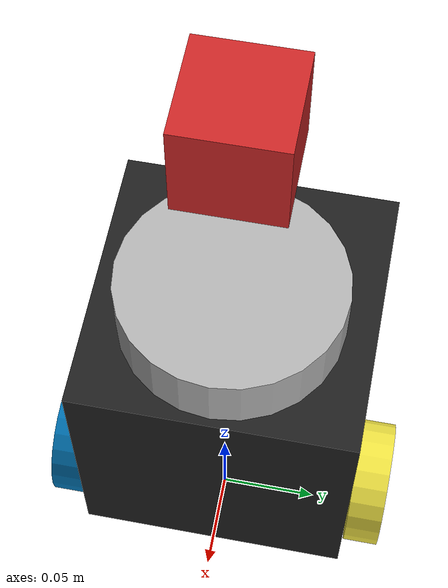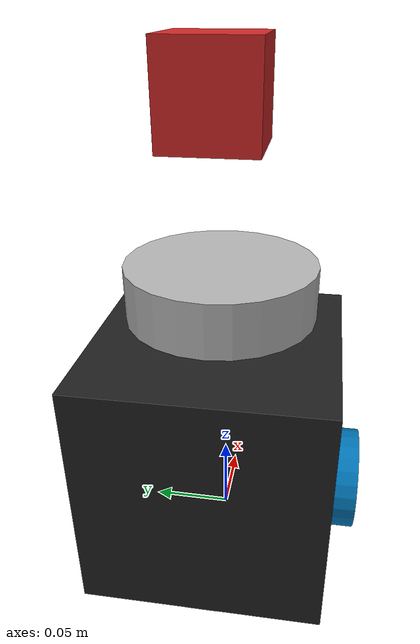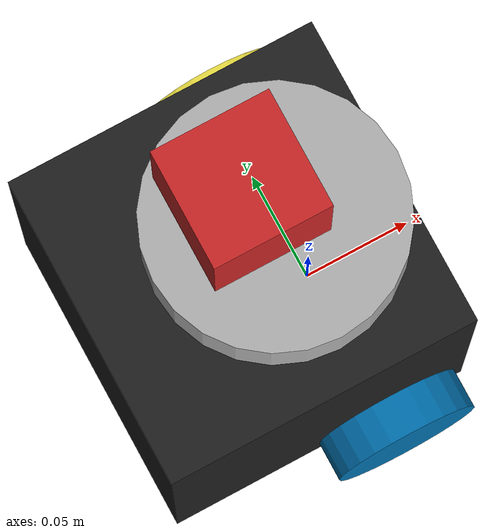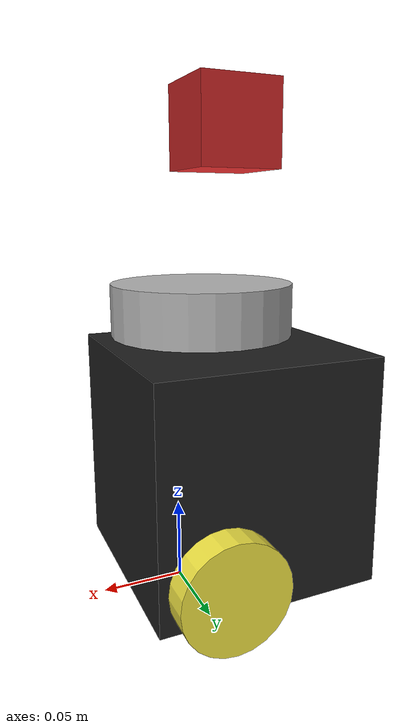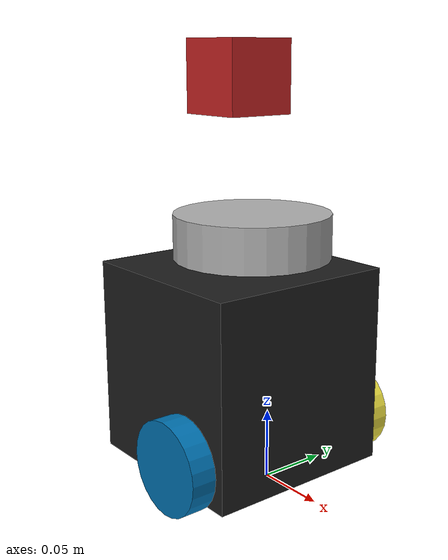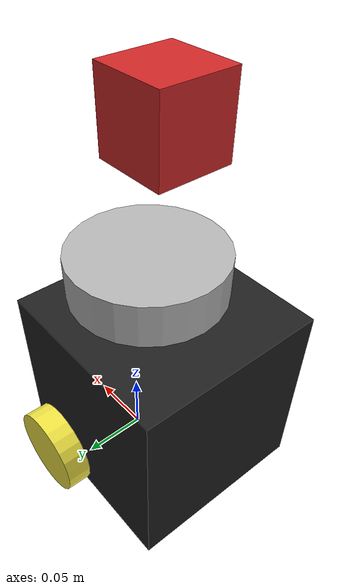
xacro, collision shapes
<?xml version="1.0" ?>
<robot name="turtlebot3_burger" xmlns:xacro="http://ros.org/wiki/xacro">
  <xacro:include filename="$(find turtlebot3_description)/urdf/common_properties.xacro"/>
  <xacro:include filename="$(find lab5)/urdf/turtlebot3_burger.gazebo.xacro"/>
  <xacro:include filename="$(find lab5)/urdf/turtlebot3_burger_camera.urdf.xacro"/>

  <link name="base_footprint"/>

  <joint name="base_joint" type="fixed">
    <parent link="base_footprint"/>
    <child link="base_link"/>
    <origin xyz="0.0 0.0 0.010" rpy="0 0 0"/>
  </joint>

  <link name="base_link">
    <visual>
      <origin xyz="-0.032 0 0.0" rpy="0 0 0"/>
      <geometry>
        <mesh filename="package://turtlebot3_description/meshes/bases/burger_base.stl" scale="0.001 0.001 0.001"/>
      </geometry>
      <material name="light_black"/>
    </visual>

    <collision>
      <origin xyz="-0.032 0 0.070" rpy="0 0 0"/>
      <geometry>
        <box size="0.140 0.140 0.143"/>
      </geometry>
    </collision>

    <inertial>
      <origin xyz="0 0 0" rpy="0 0 0"/>
      <mass value="8.2573504e-01"/>
      <inertia ixx="2.2124416e-03" ixy="-1.2294101e-05" ixz="3.4938785e-05"
               iyy="2.1193702e-03" iyz="-5.0120904e-06"
               izz="2.0064271e-03" />
    </inertial>
  </link>

  <joint name="wheel_left_joint" type="continuous">
    <parent link="base_link"/>
    <child link="wheel_left_link"/>
    <origin xyz="0.0 0.08 0.023" rpy="-1.57 0 0"/>
    <axis xyz="0 0 1"/>
  </joint>

  <link name="wheel_left_link">
    <visual>
      <origin xyz="0 0 0" rpy="1.57 0 0"/>
      <geometry>
        <mesh filename="package://turtlebot3_description/meshes/wheels/left_tire.stl" scale="0.001 0.001 0.001"/>
      </geometry>
      <material name="dark"/>
    </visual>

    <collision>
      <origin xyz="0 0 0" rpy="0 0 0"/>
      <geometry>
        <cylinder length="0.018" radius="0.033"/>
      </geometry>
    </collision>

    <inertial>
      <origin xyz="0 0 0" />
      <mass value="2.8498940e-02" />
      <inertia ixx="1.1175580e-05" ixy="-4.2369783e-11" ixz="-5.9381719e-09"
               iyy="1.1192413e-05" iyz="-1.4400107e-11"
               izz="2.0712558e-05" />
      </inertial>
  </link>

  <joint name="wheel_right_joint" type="continuous">
    <parent link="base_link"/>
    <child link="wheel_right_link"/>
    <origin xyz="0.0 -0.080 0.023" rpy="-1.57 0 0"/>
    <axis xyz="0 0 1"/>
  </joint>

  <link name="wheel_right_link">
    <visual>
      <origin xyz="0 0 0" rpy="1.57 0 0"/>
      <geometry>
        <mesh filename="package://turtlebot3_description/meshes/wheels/right_tire.stl" scale="0.001 0.001 0.001"/>
      </geometry>
      <material name="dark"/>
    </visual>

    <collision>
      <origin xyz="0 0 0" rpy="0 0 0"/>
      <geometry>
        <cylinder length="0.018" radius="0.033"/>
      </geometry>
    </collision>

    <inertial>
      <origin xyz="0 0 0" />
      <mass value="2.8498940e-02" />
      <inertia ixx="1.1175580e-05" ixy="-4.2369783e-11" ixz="-5.9381719e-09"
               iyy="1.1192413e-05" iyz="-1.4400107e-11"
               izz="2.0712558e-05" />
      </inertial>
  </link>

  <joint name="caster_back_joint" type="fixed">
    <parent link="base_link"/>
    <child link="caster_back_link"/>
    <origin xyz="-0.081 0 -0.004" rpy="-1.57 0 0"/>
  </joint>

  <link name="caster_back_link">
    <collision>
      <origin xyz="0 0.001 0" rpy="0 0 0"/>
      <geometry>
        <box size="0.030 0.009 0.020"/>
      </geometry>
    </collision>

    <inertial>
      <origin xyz="0 0 0" />
      <mass value="0.005" />
      <inertia ixx="0.001" ixy="0.0" ixz="0.0"
               iyy="0.001" iyz="0.0"
               izz="0.001" />
    </inertial>
  </link>

  <joint name="imu_joint" type="fixed">
    <parent link="base_link"/>
    <child link="imu_link"/>
    <origin xyz="-0.032 0 0.068" rpy="0 0 0"/>
  </joint>

  <link name="imu_link"/>

  <joint name="scan_joint" type="fixed">
    <parent link="base_link"/>
    <child link="base_scan"/>
    <origin xyz="-0.032 0 0.172" rpy="0 0 0"/>
  </joint>

  <link name="base_scan">
    <visual>
      <origin xyz="0 0 0.0" rpy="0 0 0"/>
      <geometry>
        <mesh filename="package://turtlebot3_description/meshes/sensors/lds.stl" scale="0.001 0.001 0.001"/>
      </geometry>
      <material name="dark"/>
    </visual>

    <collision>
      <origin xyz="0.015 0 -0.0065" rpy="0 0 0"/>
      <geometry>
        <cylinder length="0.0315" radius="0.055"/>
      </geometry>
    </collision>

    <inertial>
      <mass value="0.114" />
      <origin xyz="0 0 0" />
      <inertia ixx="0.001" ixy="0.0" ixz="0.0"
               iyy="0.001" iyz="0.0"
               izz="0.001" />
    </inertial>
  </link>

</robot>

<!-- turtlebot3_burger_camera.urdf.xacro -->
<robot name="turtlebot3_burger_cam" xmlns:xacro="http://ros.org/wiki/xacro">

  <xacro:property name="camera_link" value="0.05" /> <!-- Size of square 'camera' box -->

  <joint name="camera_joint" type="fixed">
    <axis xyz="0 1 0" />
    <origin xyz="0.0 0.0 0.1" rpy="0 0 0"/>
    <parent link="base_scan"/>
    <child link="camera_link"/>
  </joint>

  <!-- Camera -->
  <link name="camera_link">
    <collision>
      <origin xyz="0 0 0" rpy="0 0 0"/>
      <geometry>
    <box size="${camera_link} ${camera_link} ${camera_link}"/>
      </geometry>
    </collision>

    <visual>
      <origin xyz="0 0 0" rpy="0 0 0"/>
      <geometry>
    <box size="${camera_link} ${camera_link} ${camera_link}"/>
      </geometry>
      <material name="red"/>
    </visual>

    <inertial>
      <mass value="1e-5" />
      <origin xyz="0 0 0" rpy="0 0 0"/>
      <inertia ixx="1e-6" ixy="0" ixz="0" iyy="1e-6" iyz="0" izz="1e-6" />
    </inertial>
  </link>

  <!-- camera -->
  <gazebo reference="camera_link">
    <sensor type="camera" name="camera1">
      <update_rate>30.0</update_rate>
      <camera name="head">
        <horizontal_fov>1.3962634</horizontal_fov>
        <image>
          <width>800</width>
          <height>800</height>
          <format>R8G8B8</format>
        </image>
        <clip>
          <near>0.02</near>
          <far>300</far>
        </clip>
        <noise>
          <type>gaussian</type>
          <!-- Noise is sampled independently per pixel on each frame.
               That pixel's noise value is added to each of its color
               channels, which at that point lie in the range [0,1]. -->
          <mean>0.0</mean>
          <stddev>0.007</stddev>
        </noise>
      </camera>
      <plugin name="camera_controller" filename="libgazebo_ros_camera.so">
        <alwaysOn>true</alwaysOn>
        <updateRate>0.0</updateRate>
        <cameraName>turtlebot3/camera</cameraName>
        <imageTopicName>image_raw</imageTopicName>
        <cameraInfoTopicName>camera_info</cameraInfoTopicName>
        <frameName>camera_link</frameName>
        <hackBaseline>0.07</hackBaseline>
        <distortionK1>0.0</distortionK1>
        <distortionK2>0.0</distortionK2>
        <distortionK3>0.0</distortionK3>
        <distortionT1>0.0</distortionT1>
        <distortionT2>0.0</distortionT2>
      </plugin>
    </sensor>
  </gazebo>
</robot>
